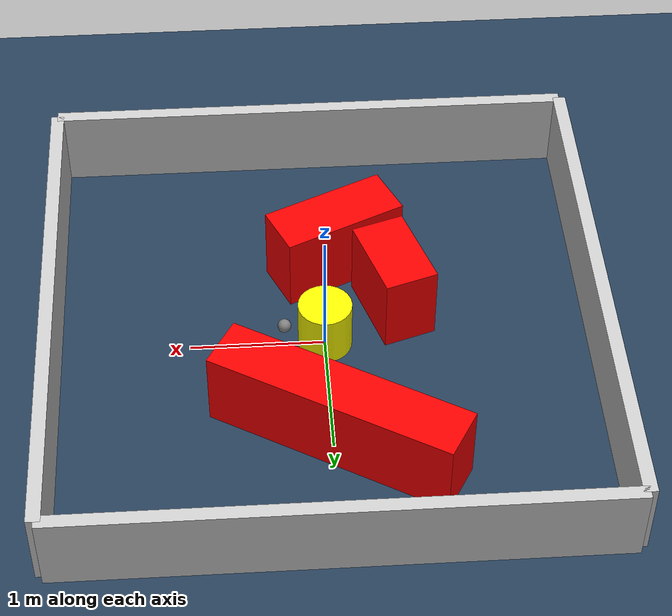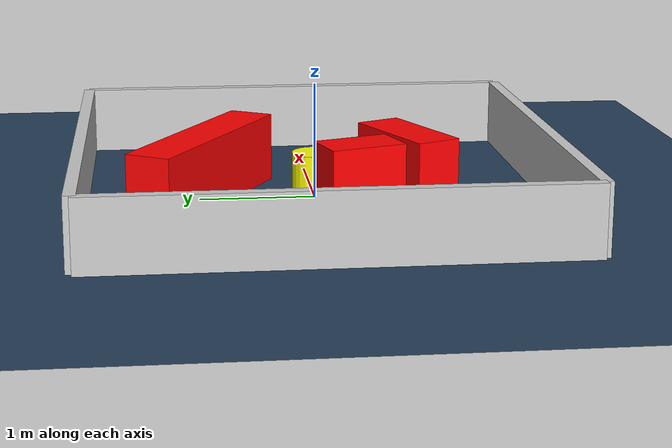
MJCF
<?xml version="1.0" ?>
<mujoco model="generated_environment">
  <option timestep="0.01" integrator="RK4" cone="elliptic"/>
  <default>
    <geom density="1"/>
  </default>
  <asset>
    <texture builtin="gradient" height="3072" rgb1="0.3 0.5 0.7" rgb2="0 0 0" type="skybox" width="512"/>
    <texture builtin="checker" height="300" mark="edge" markrgb="0.8 0.8 0.8" name="groundplane" rgb1="0.2 0.3 0.4" rgb2="0.1 0.2 0.3" type="2d" width="300"/>
    <material name="groundplane" reflectance="0.2" texrepeat="5 5" texture="groundplane" texuniform="true"/>
    <material name="robot" rgba="0.0 1.0 0.0 1"/>
  </asset>
  <worldbody>
    <light dir="0 0 -1" directional="true" pos="0 0 1.5"/>
    <geom condim="4" friction="1.0 0.005 0.001" material="groundplane" name="floor" size="0 0 0.05" type="plane"/>
    <body name="walls">
      <geom name="wall_1" condim="4" pos="-2.0 0.0 0.3" rgba="0.800000011920929 0.800000011920929 0.800000011920929 1.0" size="0.05 2.0 0.3" type="box"/>
      <geom name="wall_2" condim="4" pos="2.0 0.0 0.3" rgba="0.800000011920929 0.800000011920929 0.800000011920929 1.0" size="0.05 2.0 0.3" type="box"/>
      <geom name="wall_3" condim="4" pos="0.0 -2.0 0.3" rgba="0.800000011920929 0.800000011920929 0.800000011920929 1.0" size="2.0 0.05 0.3" type="box"/>
      <geom name="wall_4" condim="4" pos="0.0 2.0 0.3" rgba="0.800000011920929 0.800000011920929 0.800000011920929 1.0" size="2.0 0.05 0.3" type="box"/>
    </body>
    <body name="robot">
      <joint name="joint_x" type="slide" pos="0 0 0" axis="1 0 0"/>
      <joint name="joint_y" type="slide" pos="0 0 0" axis="0 1 0"/>
      <geom name="robot" type="sphere" pos="0.3 0.0 0.2" size="0.05" mass="5." friction="1.0 0.005 0.0001" condim="4" rgba="0.5 0.5 0.5 1.0"/>
      <site name="sensor_ball"/>
    </body>
    <body name="obstacle_movable_1">
      <geom name="obstacle_movable_1" condim="4" pos="0.0 0.0 0.2" euler="0 0 0.0" friction="1.0 0.005 0.001" rgba="1.0 1.0 0.0 1.0" size="0.2 0.2 0.0" type="cylinder" mass="0.1"/>
      <joint type="free"/>
    </body>
    <body name="obstacle_2_static">
      <geom name="obstacle_2_static" condim="4" pos="-0.5311105226125314 -0.3189583194443151 0.3" euler="0 0 288.0958251170414" friction="1.0 0.005 0.001" rgba="1 0 0 1" size="0.3313107874107673 0.2 0.3" type="box"/>
    </body>
    <body name="obstacle_3_static">
      <geom name="obstacle_3_static" condim="4" pos="-0.11626178631094874 -0.7877553882191419 0.3" euler="0 0 24.546583564465365" friction="1.0 0.005 0.001" rgba="1 0 0 1" size="0.4795425238622317 0.2 0.3" type="box"/>
    </body>
    <body name="obstacle_4_static">
      <geom name="obstacle_4_static" condim="4" pos="-0.04150651645046599 0.9717473304638078 0.3" euler="0 0 329.8417969680272" friction="1.0 0.005 0.001" rgba="1 0 0 1" size="0.9366596633319788 0.2 0.3" type="box"/>
    </body>
  </worldbody>
  <actuator>
    <motor name="actuator_x" joint="joint_x" gear="1" ctrlrange="-1 1"/>
    <motor name="actuator_y" joint="joint_y" gear="1" ctrlrange="-1 1"/>
  </actuator>
</mujoco>
